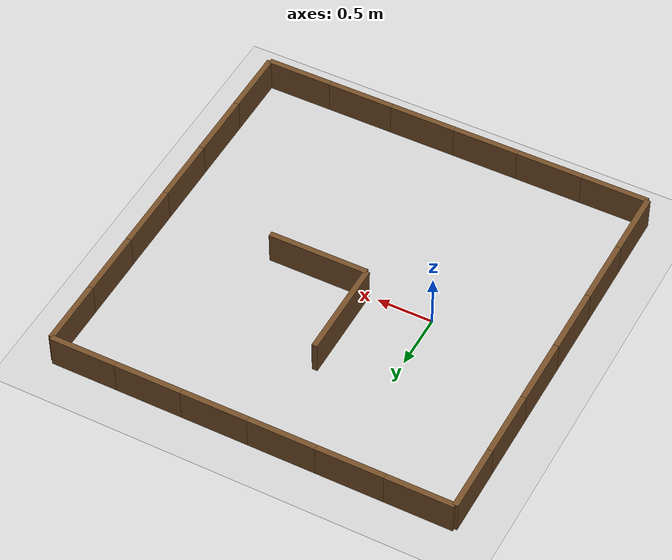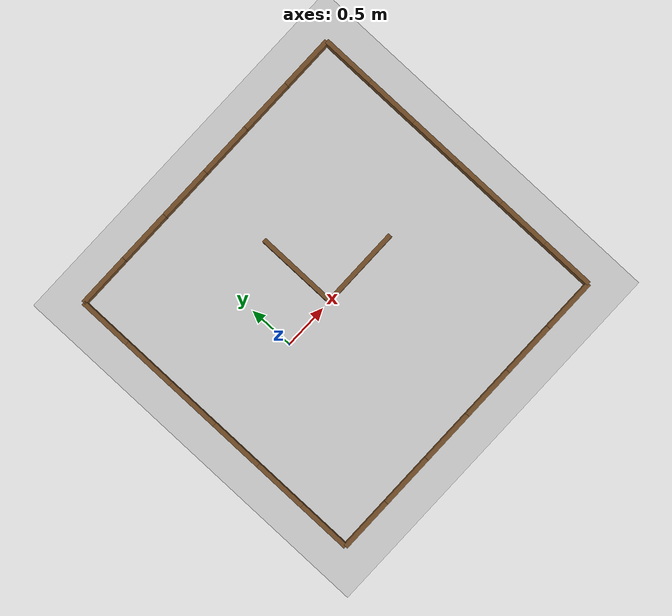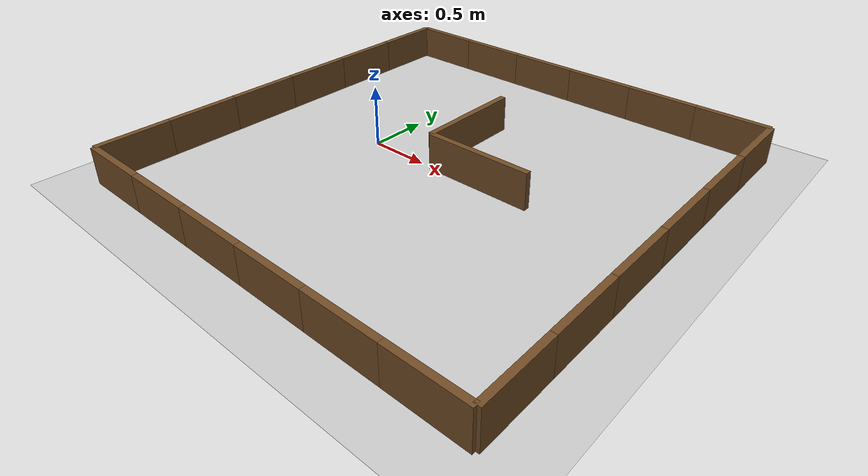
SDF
<sdf version="1.8">
 <world name="group2_custom">
  <physics name="default_physics" type="ode">
   <max_step_size>0.005</max_step_size>
   <real_time_factor>1.0</real_time_factor>
   <real_time_update_rate>200</real_time_update_rate>
  </physics>
  <plugin filename="libignition-gazebo6-physics-system.so" name="ignition::gazebo::systems::Physics"/>
  <plugin filename="libignition-gazebo6-user-commands-system.so" name="ignition::gazebo::systems::UserCommands"/>
  <plugin filename="libignition-gazebo6-scene-broadcaster-system.so" name="ignition::gazebo::systems::SceneBroadcaster"/>
  <plugin filename="libignition-gazebo6-sensors-system.so" name="ignition::gazebo::systems::Sensors">
   <render_engine>ogre2</render_engine>
  </plugin>
  <scene>
   <ambient>0.6 0.6 0.6 1</ambient>
   <background>0.8 0.8 0.8 1</background>
   <shadows>false</shadows>
   <grid>true</grid>
  </scene>
  <light type="directional" name="sun">
   <cast_shadows>false</cast_shadows>
   <pose>0 0 10 0 0 0</pose>
   <diffuse>0.8 0.8 0.8 1</diffuse>
   <specular>0.2 0.2 0.2 1</specular>
   <direction>-0.5 0.1 -0.9</direction>
  </light>
  <model name="ground_plane">
   <static>true</static>
   <link name="link">
    <collision name="collision">
     <geometry><plane><normal>0 0 1</normal><size>20 20</size></plane></geometry>
    </collision>
    <visual name="visual">
     <geometry><plane><normal>0 0 1</normal><size>20 20</size></plane></geometry>
     <material>
      <ambient>0.8 0.8 0.8 1</ambient>
      <diffuse>0.8 0.8 0.8 1</diffuse>
      <specular>0.1 0.1 0.1 1</specular>
     </material>
    </visual>
   </link>
  </model>
  <include><uri>model://wall60cm</uri><name>wall60_1</name><pose>-0.8 1.8 0.15 0 0 0</pose></include>
  <include><uri>model://wall60cm</uri><name>wall60_2</name><pose>-0.2 1.8 0.15 0 0 0</pose></include>
  <include><uri>model://wall60cm</uri><name>wall60_3</name><pose>0.4 1.8 0.15 0 0 0</pose></include>
  <include><uri>model://wall60cm</uri><name>wall60_4</name><pose>1 1.8 0.15 0 0 0</pose></include>
  <include><uri>model://wall60cm</uri><name>wall60_5</name><pose>1.6 1.8 0.15 0 0 0</pose></include>
  <include><uri>model://wall60cm</uri><name>wall60_6</name><pose>2.2 1.8 0.15 0 0 0</pose></include>
  <include><uri>model://wall60cm</uri><name>wall60_7</name><pose>-0.8 -1.8 0.15 0 0 0</pose></include>
  <include><uri>model://wall60cm</uri><name>wall60_8</name><pose>-0.2 -1.8 0.15 0 0 0</pose></include>
  <include><uri>model://wall60cm</uri><name>wall60_9</name><pose>0.4 -1.8 0.15 0 0 0</pose></include>
  <include><uri>model://wall60cm</uri><name>wall60_10</name><pose>1 -1.8 0.15 0 0 0</pose></include>
  <include><uri>model://wall60cm</uri><name>wall60_11</name><pose>1.6 -1.8 0.15 0 0 0</pose></include>
  <include><uri>model://wall60cm</uri><name>wall60_12</name><pose>2.2 -1.8 0.15 0 0 0</pose></include>
  <include><uri>model://wall60cm</uri><name>wall60_13</name><pose>2.5 -1.5 0.15 0 0 1.57</pose></include>
  <include><uri>model://wall60cm</uri><name>wall60_14</name><pose>2.5 -0.9 0.15 0 0 1.57</pose></include>
  <include><uri>model://wall60cm</uri><name>wall60_15</name><pose>2.5 -0.3 0.15 0 0 1.57</pose></include>
  <include><uri>model://wall60cm</uri><name>wall60_16</name><pose>2.5 0.3 0.15 0 0 1.57</pose></include>
  <include><uri>model://wall60cm</uri><name>wall60_17</name><pose>2.5 0.9 0.15 0 0 1.57</pose></include>
  <include><uri>model://wall60cm</uri><name>wall60_18</name><pose>2.5 1.5 0.15 0 0 1.57</pose></include>
  <include><uri>model://wall60cm</uri><name>wall60_19</name><pose>-1.1 -1.5 0.15 0 0 1.57</pose></include>
  <include><uri>model://wall60cm</uri><name>wall60_20</name><pose>-1.1 -0.9 0.15 0 0 1.57</pose></include>
  <include><uri>model://wall60cm</uri><name>wall60_21</name><pose>-1.1 -0.3 0.15 0 0 1.57</pose></include>
  <include><uri>model://wall60cm</uri><name>wall60_22</name><pose>-1.1 0.3 0.15 0 0 1.57</pose></include>
  <include><uri>model://wall60cm</uri><name>wall60_23</name><pose>-1.1 0.9 0.15 0 0 1.57</pose></include>
  <include><uri>model://wall60cm</uri><name>wall60_24</name><pose>-1.1 1.5 0.15 0 0 1.57</pose></include>
  <include><uri>model://wall90cm</uri><name>wall90_1</name><pose>0.6 0.45 0.15 0 0 1.57</pose></include>
  <include><uri>model://wall90cm</uri><name>wall90_2</name><pose>1.05 0 0.15 0 0 0</pose></include>
 </world>
</sdf>

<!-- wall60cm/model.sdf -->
<sdf version="1.7">
  <model name="wall60cm">
    <static>true</static>
    <pose>0 0 0 0 0 0</pose>

    <link name="link">
      <collision name="collision">
        <geometry><box><size>0.6 0.05 0.3</size></box></geometry>
      </collision>

      <visual name="visual">
        <geometry><box><size>0.6 0.05 0.3</size></box></geometry>
        <material>
          <ambient>0.45 0.30 0.15 1</ambient>
          <diffuse>0.45 0.30 0.15 1</diffuse>
          <specular>0.05 0.05 0.05 1</specular>
        </material>
      </visual>
    </link>
  </model>
</sdf>

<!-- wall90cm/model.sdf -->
<sdf version="1.7">
  <model name="wall90cm">
    <static>true</static>

    <pose>0 0 0 0 0 0</pose>

    <link name="link">
      <collision name="collision">
        <geometry>
          <box>
            <size>0.9 0.05 0.3</size>
          </box>
        </geometry>
      </collision>

      <visual name="visual">
        <geometry>
          <box>
            <size>0.9 0.05 0.3</size>
          </box>
        </geometry>

        <!-- Material portable (Ignition + gz-sim) -->
        <material>
          <!-- “wood-ish” simple -->
          <ambient>0.45 0.30 0.15 1</ambient>
          <diffuse>0.45 0.30 0.15 1</diffuse>
          <specular>0.05 0.05 0.05 1</specular>
        </material>
      </visual>
    </link>
  </model>
</sdf>
